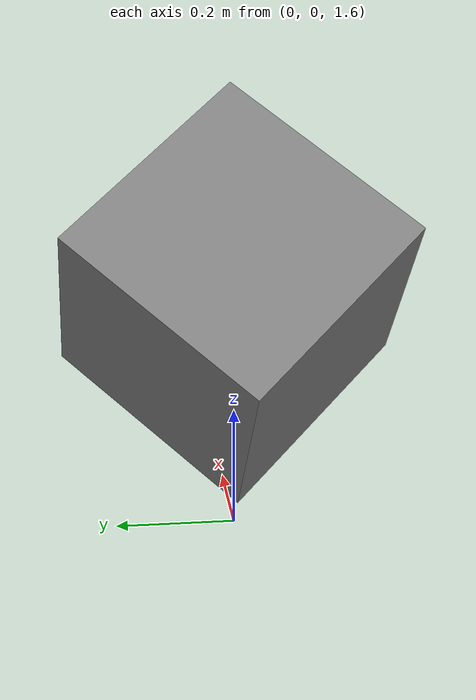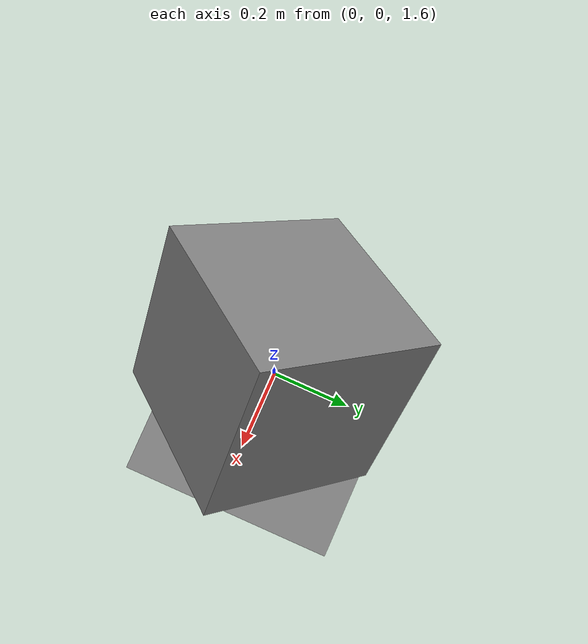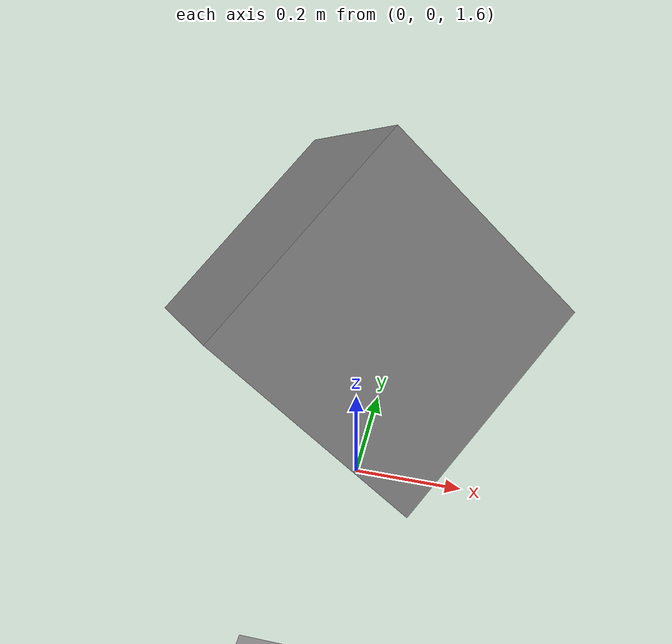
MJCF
<mujoco model="fluid-box">
  <custom>
    <numeric data="0.2" name="baumgarte_erp"/>
    <numeric data="0.5" name="elasticity"/>
  </custom>
  <option timestep="0.01" density="1.2" viscosity="0.15"/>
  <worldbody>
    <geom name="floor" pos="0 0 0" size="40 40 40" type="plane"/>
    <body name="box" pos="0.0 0.0 2.0" euler="0 -45 45">
      <joint axis="1 0 0" name="free3" pos="0 0 0" type="free"/>
      <geom name="box1" pos="0 0 0" size="0.2 0.2 0.2" type="box" fluidcoef="0.47 0.25 1.5 1.0 1.0" fluidshape="ellipsoid"/>
    </body>
  </worldbody>
</mujoco>
